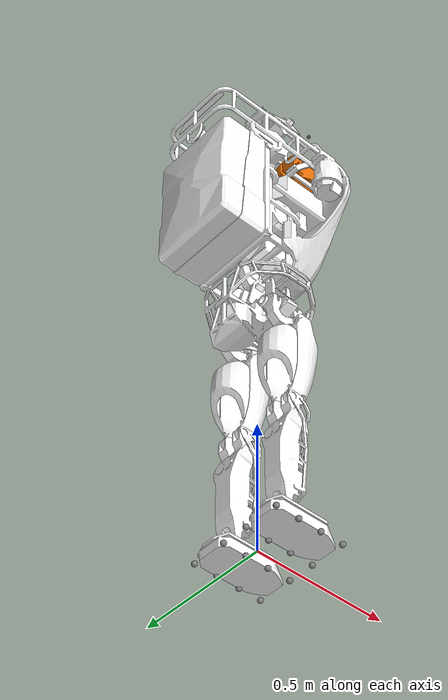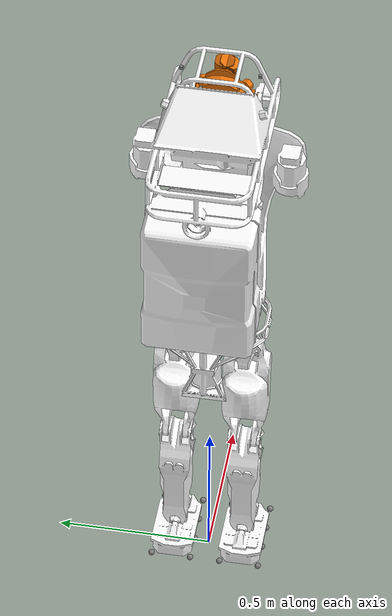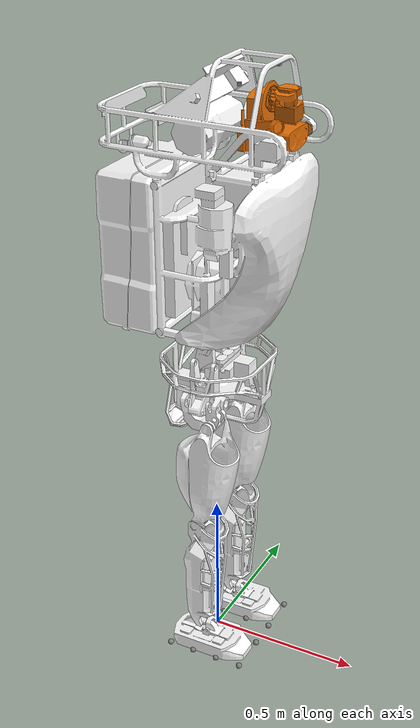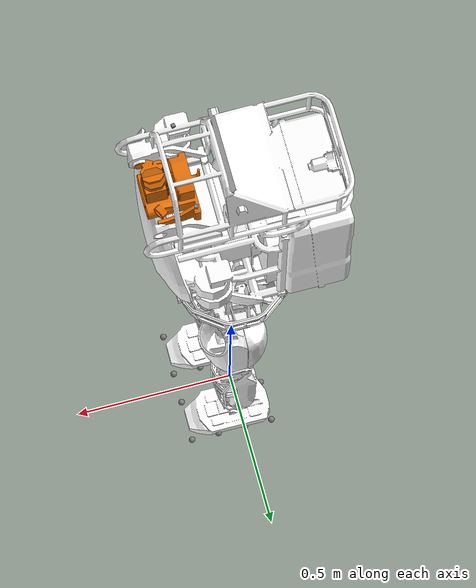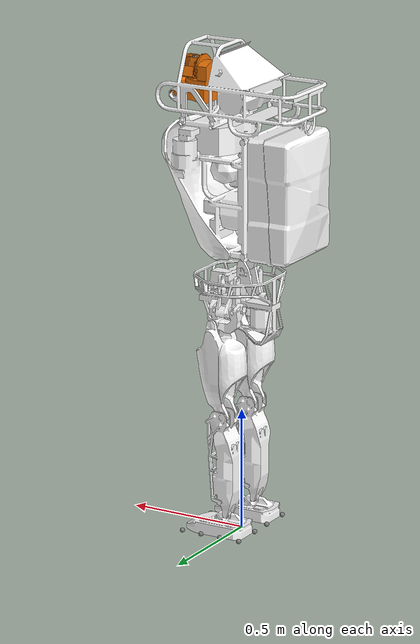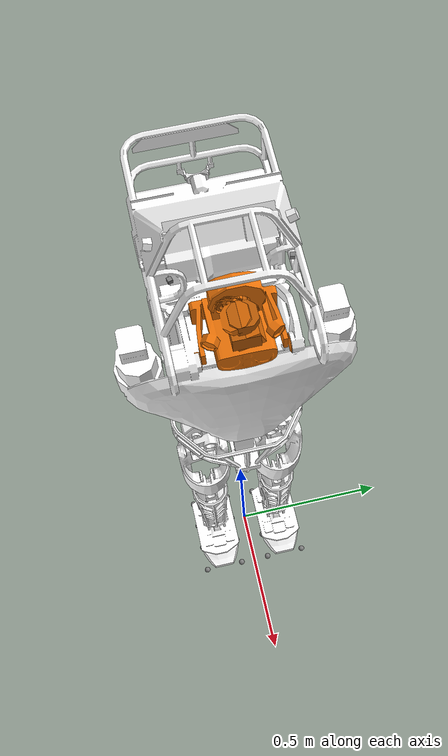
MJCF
<mujoco model="atlas">
  <compiler angle="radian" meshdir="meshes/" autolimits="true"/>

  <statistic meansize="0.216123" extent="2.3196" center="-0.000225445 0 0.0799605"/>

  <default>
    <default class="atlas">
      <default class="visual">
        <geom type="mesh" contype="0" conaffinity="0" group="2" density="0" material="white"/>
      </default>
    </default>
  </default>

  <asset>
    <mesh name="r_clav" file="r_clav.obj"/>
    <mesh name="l_foot" file="l_foot.obj"/>
    <mesh name="r_larm" file="r_larm.obj"/>
    <mesh name="r_hand" file="r_hand.obj"/>
    <mesh name="l_lglut" file="l_lglut.obj"/>
    <mesh name="l_lleg" file="l_lleg.obj"/>
    <mesh name="r_scap" file="r_scap.obj"/>
    <mesh name="l_talus" file="l_talus.obj"/>
    <mesh name="r_uarm" file="r_uarm.obj"/>
    <mesh name="r_farm" file="r_farm.obj"/>
    <mesh name="l_uglut" file="l_uglut.obj"/>
    <mesh name="l_uleg" file="l_uleg.obj"/>
    <mesh name="ltorso" file="ltorso.obj"/>
    <mesh name="mtorso" file="mtorso.obj"/>
    <mesh name="pelvis" file="pelvis.obj"/>
    <mesh name="r_foot" file="r_foot.obj"/>
    <mesh name="r_lglut" file="r_lglut.obj"/>
    <mesh name="r_lleg" file="r_lleg.obj"/>
    <mesh name="r_talus" file="r_talus.obj"/>
    <mesh name="r_uglut" file="r_uglut.obj"/>
    <mesh name="r_uleg" file="r_uleg.obj"/>
    <mesh name="utorso" file="utorso.obj"/>
    <mesh name="head" file="head.obj"/>
    <mesh name="head_camera" file="head_camera.obj"/>

    <material name="white" rgba="1 1 1 1" specular="0.4" shininess="0.6"/>
  </asset>
  <worldbody>
    <body name="pelvis" pos="0 0 0.95">
      <!-- comment in order to fix the body -->
      <joint name="world_joint_TX" pos="0 0 0" axis="1 0 0" type="slide"/>
      <joint name="world_joint_TY" pos="0 0 0" axis="0 0 -1" type="slide"/>
      <joint name="world_joint_RZ" pos="0 0 0" axis="0 1 0"/>
      <geom class="visual" mesh="pelvis"/>
      <inertial pos="0.0111 0 0.0271" quat="0.698584 0.713914 0.0424837 -0.0224092" mass="9.509"
        diaginertia="0.124488 0.116646 0.0957666"/>
      <body name="ltorso" pos="-0.0125 0 0">
        <inertial pos="-0.0112984 -3.15366e-06 0.0746835" quat="0.997071 0.000128212 0.076485 -0.00012406" mass="2.27"
          diaginertia="0.003962 0.00341694 0.00169212"/>
        <geom class="visual" mesh="ltorso"/>
        <body name="mtorso" pos="0 0 0.162">
          <inertial pos="-0.00816266 -0.0131245 0.0305974" quat="0.108378 0.49314 0.746335 0.433648" mass="0.799"
            diaginertia="0.000536243 0.000487378 0.000358057"/>
          <joint name="back_bky" pos="0 0 0" axis="0 1 0" range="-0.219388 0.538783" damping="0.1"/>
          <geom class="visual" mesh="mtorso"/>
          <body name="utorso" pos="0 0 0.05">
            <inertial pos="-0.0616866 0.00229456 0.316809" quat="0.483464 -0.0233226 -0.0389662 0.874186" mass="84.609"
              diaginertia="1.67522 1.61265 0.568768"/>
            <geom class="visual" mesh="utorso"/>
            <geom size="0.005 0.005 0.005" pos="0.155 -0.121 0.785" quat="0.793352 0 0 -0.608763" type="box" contype="0"
              conaffinity="0" group="1" density="0"/>
            <geom size="0.005 0.005 0.005" pos="0.155 0.121 0.785" quat="0.793352 0 0 0.608763" type="box" contype="0"
              conaffinity="0" group="1" density="0"/>
            <body name="head" pos="0.2546 0 0.6215">
              <inertial pos="-0.0526114 3.39872e-05 0.0260689" quat="-0.00433632 0.59051 -0.00248869 0.807015"
                mass="2.08756" diaginertia="0.0135173 0.0133409 0.0119567"/>
              <joint name="neck_ay" pos="0 0 0" axis="0 1 0" range="-0.602139 1.14319" damping="0.1"/>
              <geom class="visual" rgba="0.9098 0.44314 0.031373 1" mesh="head"/>
              <geom pos="0.0004 -0.0261018 0.00457631" quat="0.987701 -0.156356 0 0" type="mesh" contype="0"
                conaffinity="0" group="1" density="0" rgba="0.72941 0.35686 0.023529 1" mesh="head_camera"/>
            </body>
          </body>
        </body>
      </body>
      <body name="l_uglut" pos="0 0.089 0">
        <inertial pos="0.00529262 -0.00344732 0.00313046" quat="0.999122 -7.72169e-05 0.0419028 -0.000305187"
          mass="1.959" diaginertia="0.000745109 0.000688179 0.000410071"/>
        <geom class="visual" mesh="l_uglut"/>
        <body name="l_lglut">
          <inertial pos="0.0133341 0.0170484 -0.0312052" quat="0.353465 0.600383 0.388609 0.602981" mass="0.898"
            diaginertia="0.00133867 0.000995812 0.000690275"/>
          <geom class="visual" mesh="l_lglut"/>
          <body name="l_uleg" pos="0.05 0.0225 -0.066">
            <inertial pos="0 0 -0.21" mass="8.204" diaginertia="0.09 0.09 0.02"/>
            <joint name="l_leg_hpy" pos="0 0 0" axis="0 1 0" range="-1.61234 0.65764" damping="0.1"/>
            <geom class="visual" mesh="l_uleg"/>
            <body name="l_lleg" pos="-0.05 0 -0.374">
              <inertial pos="0.001 0 -0.187" quat="0.999751 0 0.0223266 0" mass="4.515"
                diaginertia="0.0771341 0.076 0.00986594"/>
              <joint name="l_leg_kny" pos="0 0 0" axis="0 1 0" range="0 2.35637" damping="0.1"/>
              <geom class="visual" mesh="l_lleg"/>
              <body name="l_talus" pos="0 0 -0.422">
                <inertial pos="0 0 0" quat="0.5 0.5 -0.5 0.5" mass="0.125"
                  diaginertia="1.30101e-05 1.01674e-05 8.42775e-06"/>
                <joint name="l_leg_aky" pos="0 0 0" axis="0 1 0" range="-1 0.7" damping="0.1"/>
                <geom class="visual" mesh="l_talus"/>
                <body name="l_foot">
                  <inertial pos="0.027 0 -0.067" quat="0 0.707107 0 0.707107" mass="2.41"
                    diaginertia="0.008 0.007 0.002"/>
                  <geom class="visual" mesh="l_foot"/>
                  <geom size="0.0001" pos="-0.0876 0.066 -0.07645"/>
                  <geom size="0.01" pos="-0.0876 0.066 -0.07645" contype="0" conaffinity="0" group="1" density="0"/>
                  <geom size="0.0001" pos="-0.0876 -0.0626 -0.07645"/>
                  <geom size="0.01" pos="-0.0876 -0.0626 -0.07645" contype="0" conaffinity="0" group="1" density="0"/>
                  <geom size="0.0001" pos="0.1728 0.066 -0.07645"/>
                  <geom size="0.01" pos="0.1728 0.066 -0.07645" contype="0" conaffinity="0" group="1" density="0"/>
                  <geom size="0.0001" pos="0.1728 -0.0626 -0.07645"/>
                  <geom size="0.01" pos="0.1728 -0.0626 -0.07645" contype="0" conaffinity="0" group="1" density="0"/>
                  <geom size="0.0001" pos="0.086 0.066 -0.07645"/>
                  <geom size="0.01" pos="0.086 0.066 -0.07645" contype="0" conaffinity="0" group="1" density="0"/>
                  <geom size="0.0001" pos="0.086 -0.0626 -0.07645"/>
                  <geom size="0.01" pos="0.086 -0.0626 -0.07645" contype="0" conaffinity="0" group="1" density="0"/>
                  <geom size="0.0001" pos="-0.0008 0.066 -0.07645"/>
                  <geom size="0.01" pos="-0.0008 0.066 -0.07645" contype="0" conaffinity="0" group="1" density="0"/>
                  <geom size="0.0001" pos="-0.0008 -0.0626 -0.07645"/>
                  <geom size="0.01" pos="-0.0008 -0.0626 -0.07645" contype="0" conaffinity="0" group="1" density="0"/>
                </body>
              </body>
            </body>
          </body>
        </body>
      </body>
      <body name="r_uglut" pos="0 -0.089 0">
        <inertial pos="0.00529262 0.00344732 0.00313046" quat="0.999122 7.72169e-05 0.0419028 0.000305187" mass="1.959"
          diaginertia="0.000745109 0.000688179 0.000410071"/>
        <geom class="visual" mesh="r_uglut"/>
        <body name="r_lglut">
          <inertial pos="0.0133341 -0.0170484 -0.0312052" quat="0.602981 0.388609 0.600383 0.353465" mass="0.898"
            diaginertia="0.00133867 0.000995812 0.000690275"/>
          <geom class="visual" mesh="r_lglut"/>
          <body name="r_uleg" pos="0.05 -0.0225 -0.066">
            <inertial pos="0 0 -0.21" mass="8.204" diaginertia="0.09 0.09 0.02"/>
            <joint name="r_leg_hpy" pos="0 0 0" axis="0 1 0" range="-1.61234 0.65764" damping="0.1"/>
            <geom class="visual" mesh="r_uleg"/>
            <body name="r_lleg" pos="-0.05 0 -0.374">
              <inertial pos="0.001 0 -0.187" quat="0.999751 0 0.0223266 0" mass="4.515"
                diaginertia="0.0771341 0.076 0.00986594"/>
              <joint name="r_leg_kny" pos="0 0 0" axis="0 1 0" range="0 2.35637" damping="0.1"/>
              <geom class="visual" mesh="r_lleg"/>
              <body name="r_talus" pos="0 0 -0.422">
                <inertial pos="0 0 0" quat="0.5 0.5 -0.5 0.5" mass="0.125"
                  diaginertia="1.30101e-05 1.01674e-05 8.42775e-06"/>
                <joint name="r_leg_aky" pos="0 0 0" axis="0 1 0" range="-1 0.7" damping="0.1"/>
                <geom class="visual" mesh="r_talus"/>
                <body name="r_foot">
                  <inertial pos="0.027 0 -0.067" quat="0 0.707107 0 0.707107" mass="2.41"
                    diaginertia="0.008 0.007 0.002"/>
                  <geom class="visual" mesh="r_foot"/>
                  <geom size="0.0001" pos="-0.0876 0.0626 -0.07645"/>
                  <geom size="0.01" pos="-0.0876 0.0626 -0.07645" contype="0" conaffinity="0" group="1" density="0"/>
                  <geom size="0.0001" pos="-0.0876 -0.066 -0.07645"/>
                  <geom size="0.01" pos="-0.0876 -0.066 -0.07645" contype="0" conaffinity="0" group="1" density="0"/>
                  <geom size="0.0001" pos="0.1728 0.0626 -0.07645"/>
                  <geom size="0.01" pos="0.1728 0.0626 -0.07645" contype="0" conaffinity="0" group="1" density="0"/>
                  <geom size="0.0001" pos="0.1728 -0.066 -0.07645"/>
                  <geom size="0.01" pos="0.1728 -0.066 -0.07645" contype="0" conaffinity="0" group="1" density="0"/>
                  <geom size="0.0001" pos="0.086 0.0626 -0.07645"/>
                  <geom size="0.01" pos="0.086 0.0626 -0.07645" contype="0" conaffinity="0" group="1" density="0"/>
                  <geom size="0.0001" pos="0.086 -0.066 -0.07645"/>
                  <geom size="0.01" pos="0.086 -0.066 -0.07645" contype="0" conaffinity="0" group="1" density="0"/>
                  <geom size="0.0001" pos="-0.0008 0.0626 -0.07645"/>
                  <geom size="0.01" pos="-0.0008 0.0626 -0.07645" contype="0" conaffinity="0" group="1" density="0"/>
                  <geom size="0.0001" pos="-0.0008 -0.066 -0.07645"/>
                  <geom size="0.01" pos="-0.0008 -0.066 -0.07645" contype="0" conaffinity="0" group="1" density="0"/>
                </body>
              </body>
            </body>
          </body>
        </body>
      </body>
    </body>
  </worldbody>

  <actuator>
    <motor name="back_bky_motor" joint="back_bky"/>
    <motor name="neck_ay_motor" joint="neck_ay"/>

    <motor name="l_leg_hpy_motor" joint="l_leg_hpy"/>
    <motor name="l_leg_kny_motor" joint="l_leg_kny"/>
    <motor name="l_leg_aky_motor" joint="l_leg_aky"/>

    <motor name="r_leg_hpy_motor" joint="r_leg_hpy"/>
    <motor name="r_leg_kny_motor" joint="r_leg_kny"/>
    <motor name="r_leg_aky_motor" joint="r_leg_aky"/>
  </actuator>
</mujoco>
